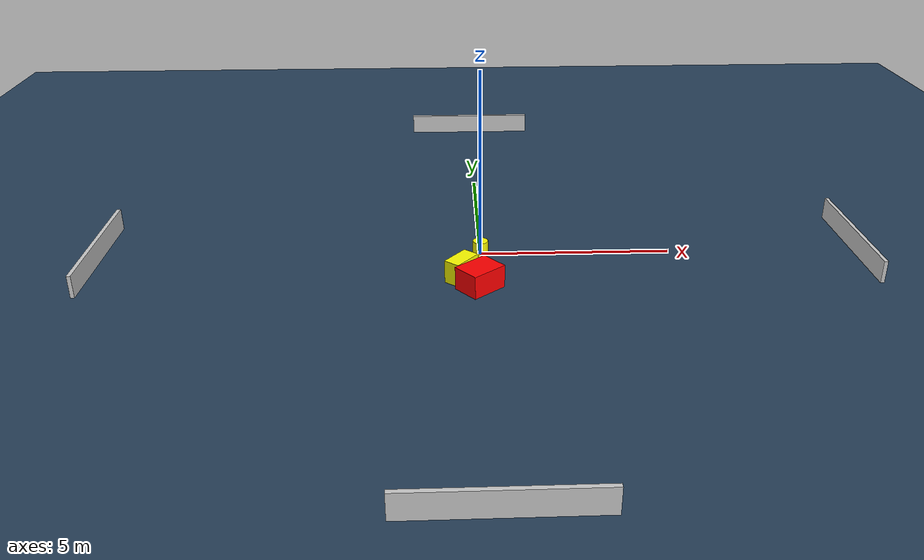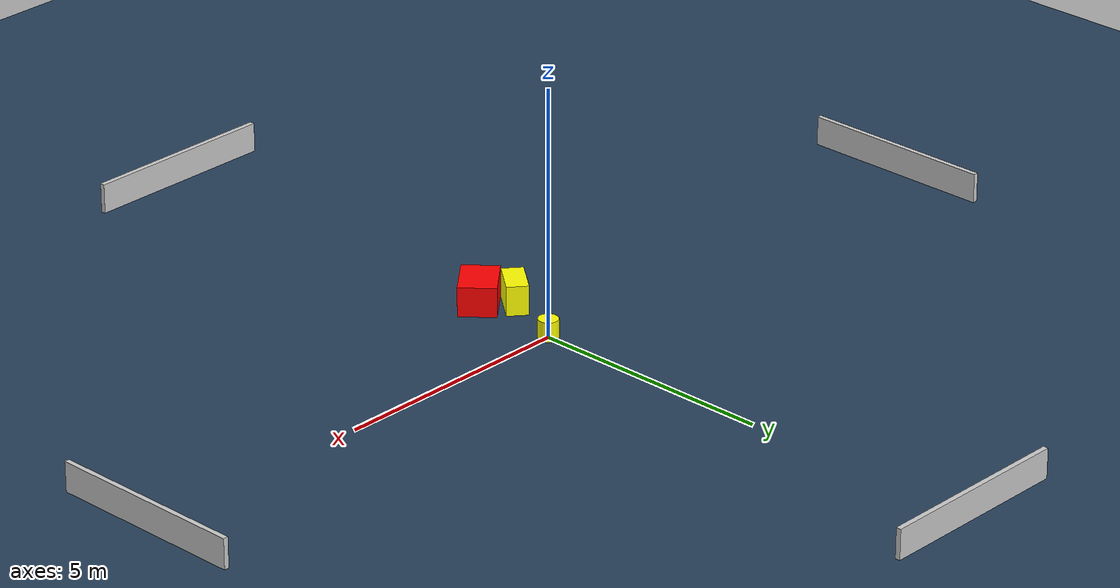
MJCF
<?xml version="1.0" ?>
<mujoco model="generated_environment">
  <option timestep="0.01" integrator="RK4" cone="elliptic"/>
  <default>
    <geom density="1"/>
  </default>
  <asset>
    <texture builtin="gradient" height="3072" name="skybox" rgb1="0.3 0.5 0.7" rgb2="0 0 0" type="skybox" width="512"/>
    <texture builtin="checker" height="300" name="groundplane" rgb1="0.2 0.3 0.4" rgb2="0.1 0.2 0.3" type="2d" width="300"/>
    <material name="groundplane" reflectance="0.2" texrepeat="5 5" texture="groundplane"/>
  </asset>
  <worldbody>
    <light dir="0 0 -1" directional="true" pos="0 0 1.5"/>
    <geom condim="3" friction="0.5 0.005 0.001" material="groundplane" name="floor" pos="0 0 0" size="0 0 0.05" type="plane"/>
    <body name="walls">
      <geom name="wall_1" condim="4" pos="-10.0 0.0 0.3" rgba="0.800000011920929 0.800000011920929 0.800000011920929 1.0" size="0.05 2.0 0.3" type="box"/>
      <geom name="wall_2" condim="4" pos="10.0 0.0 0.3" rgba="0.800000011920929 0.800000011920929 0.800000011920929 1.0" size="0.05 2.0 0.3" type="box"/>
      <geom name="wall_3" condim="4" pos="0.0 -10.0 0.3" rgba="0.800000011920929 0.800000011920929 0.800000011920929 1.0" size="2.0 0.05 0.3" type="box"/>
      <geom name="wall_4" condim="4" pos="0.0 10.0 0.3" rgba="0.800000011920929 0.800000011920929 0.800000011920929 1.0" size="2.0 0.05 0.3" type="box"/>
    </body>
    <body name="robot">
      <joint name="joint_x" type="slide" pos="0 0 0" axis="1 0 0"/>
      <joint name="joint_y" type="slide" pos="0 0 0" axis="0 1 0"/>
      <geom name="robot" type="cylinder" pos="0.0 0.0 0.2" size="0.2 0.2 0.0" mass="5.0" friction="1.0 0.005 0.0001" condim="4" rgba="1.0 1.0 0.0 1.0"/>
    </body>
    <body name="obstacle_1_movable">
      <geom name="obstacle_1_movable" condim="4" pos="-0.5304336310814665 -1.3577504113005068 0.3" euler="0 0 230.94552414473844" friction="0.0 0.005 0.001" rgba="1.0 1.0 0.0 1.0" size="0.4064090038142896 0.21606022642292125 0.3" type="box" mass="0.1"/>
      <joint type="free"/>
    </body>
    <body name="obstacle_2_static">
      <geom name="obstacle_2_static" condim="4" pos="-0.0854019609210908 -1.8608945970006623 0.3" euler="0 0 310.0260813233545" friction="0.0 0.005 0.001" rgba="1.0 0.0 0.0 1.0" size="0.3729560018955639 0.4899270914226127 0.3" type="box"/>
    </body>
  </worldbody>
  <actuator>
    <motor name="actuator_x" joint="joint_x" gear="1" ctrlrange="-1 1"/>
    <motor name="actuator_y" joint="joint_y" gear="1" ctrlrange="-1 1"/>
  </actuator>
</mujoco>
